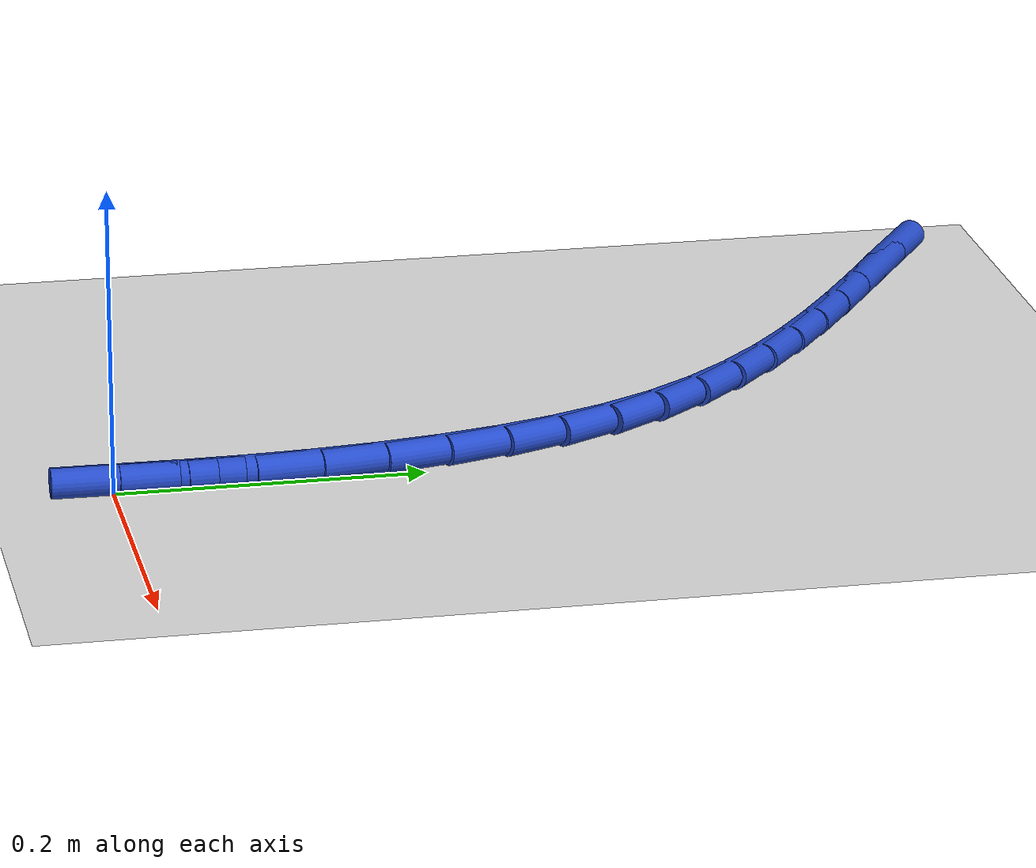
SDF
<sdf version="1.6">
 <world name="default">
  <model name="ground_plane">
   <static>1</static>
   <link name="link">
    <collision name="collision">
     <geometry><plane><normal>0 0 1</normal><size>100 100</size></plane></geometry>
     <surface><friction><ode><mu>100</mu><mu2>50</mu2></ode></friction></surface>
    </collision>
    <visual name="visual">
     <cast_shadows>0</cast_shadows>
     <geometry><plane><normal>0 0 1</normal><size>100 100</size></plane></geometry>
     <material>
      <script><uri>file://media/materials/scripts/gazebo.material</uri><name>Gazebo/WhiteGlow</name></script>
     </material>
    </visual>
   </link>
  </model>
  <model name="line">
   <link name="link_0">
    <pose>1.6046192152785466e-17 8.326672684688674e-17 0.01 0 1.57 1.5554259373008228</pose>
    <collision name="collision">
     <geometry><cylinder><radius>0.01</radius><length>0.08</length></cylinder></geometry>
    </collision>
    <visual name="visual">
     <material>
      <script><name>Gazebo/Blue</name><uri>file://media/materials/scripts/gazebo.material</uri></script>
     </material>
     <geometry><cylinder><radius>0.01</radius><length>0.08</length></cylinder></geometry>
    </visual>
   </link>
   <link name="link_1">
    <pose>0.0006633091673790335 0.04315160207646187 0.01 0 1.57 -1.5537687806283904</pose>
    <collision name="collision">
     <geometry><cylinder><radius>0.01</radius><length>0.08</length></cylinder></geometry>
    </collision>
    <visual name="visual">
     <material>
      <script><name>Gazebo/Blue</name><uri>file://media/materials/scripts/gazebo.material</uri></script>
     </material>
     <geometry><cylinder><radius>0.01</radius><length>0.08</length></cylinder></geometry>
    </visual>
   </link>
   <link name="link_2">
    <pose>-7.289730888802675e-05 0.08638362837355847 0.01 0 1.57 -1.5144177519370408</pose>
    <collision name="collision">
     <geometry><cylinder><radius>0.01</radius><length>0.08</length></cylinder></geometry>
    </collision>
    <visual name="visual">
     <material>
      <script><name>Gazebo/Blue</name><uri>file://media/materials/scripts/gazebo.material</uri></script>
     </material>
     <geometry><cylinder><radius>0.01</radius><length>0.08</length></cylinder></geometry>
    </visual>
   </link>
   <link name="link_3">
    <pose>-0.002498578812207435 0.12936291473853773 0.01 0 1.57 -1.4672574481096157</pose>
    <collision name="collision">
     <geometry><cylinder><radius>0.01</radius><length>0.08</length></cylinder></geometry>
    </collision>
    <visual name="visual">
     <material>
      <script><name>Gazebo/Blue</name><uri>file://media/materials/scripts/gazebo.material</uri></script>
     </material>
     <geometry><cylinder><radius>0.01</radius><length>0.08</length></cylinder></geometry>
    </visual>
   </link>
   <link name="link_4">
    <pose>-0.006903694725985474 0.17175629701864756 0.01 0 1.57 -1.4112332738049453</pose>
    <collision name="collision">
     <geometry><cylinder><radius>0.01</radius><length>0.08</length></cylinder></geometry>
    </collision>
    <visual name="visual">
     <material>
      <script><name>Gazebo/Blue</name><uri>file://media/materials/scripts/gazebo.material</uri></script>
     </material>
     <geometry><cylinder><radius>0.01</radius><length>0.08</length></cylinder></geometry>
    </visual>
   </link>
   <link name="link_5">
    <pose>-0.013578204433628416 0.21323061106113592 0.01 0 1.57 -1.3451344930665576</pose>
    <collision name="collision">
     <geometry><cylinder><radius>0.01</radius><length>0.08</length></cylinder></geometry>
    </collision>
    <visual name="visual">
     <material>
      <script><name>Gazebo/Blue</name><uri>file://media/materials/scripts/gazebo.material</uri></script>
     </material>
     <geometry><cylinder><radius>0.01</radius><length>0.08</length></cylinder></geometry>
    </visual>
   </link>
   <link name="link_6">
    <pose>-0.022812067318542538 0.25345269271325055 0.01 0 1.57 -1.2676942745625357</pose>
    <collision name="collision">
     <geometry><cylinder><radius>0.01</radius><length>0.08</length></cylinder></geometry>
    </collision>
    <visual name="visual">
     <material>
      <script><name>Gazebo/Blue</name><uri>file://media/materials/scripts/gazebo.material</uri></script>
     </material>
     <geometry><cylinder><radius>0.01</radius><length>0.08</length></cylinder></geometry>
    </visual>
   </link>
   <link name="link_7">
    <pose>-0.03489524276413412 0.2920893778222395 0.01 0 1.57 -1.1777880586712044</pose>
    <collision name="collision">
     <geometry><cylinder><radius>0.01</radius><length>0.08</length></cylinder></geometry>
    </collision>
    <visual name="visual">
     <material>
      <script><name>Gazebo/Blue</name><uri>file://media/materials/scripts/gazebo.material</uri></script>
     </material>
     <geometry><cylinder><radius>0.01</radius><length>0.08</length></cylinder></geometry>
    </visual>
   </link>
   <link name="link_8">
    <pose>-0.05011769015380943 0.3288075022353504 0.01 0 1.57 -1.074769846922253</pose>
    <collision name="collision">
     <geometry><cylinder><radius>0.01</radius><length>0.08</length></cylinder></geometry>
    </collision>
    <visual name="visual">
     <material>
      <script><name>Gazebo/Blue</name><uri>file://media/materials/scripts/gazebo.material</uri></script>
     </material>
     <geometry><cylinder><radius>0.01</radius><length>0.08</length></cylinder></geometry>
    </visual>
   </link>
   <link name="link_9">
    <pose>-0.06876934157704286 0.3632739264172566 0.01 0 1.57 -0.9638605360832847</pose>
    <collision name="collision">
     <geometry><cylinder><radius>0.01</radius><length>0.08</length></cylinder></geometry>
    </collision>
    <visual name="visual">
     <material>
      <script><name>Gazebo/Blue</name><uri>file://media/materials/scripts/gazebo.material</uri></script>
     </material>
     <geometry><cylinder><radius>0.01</radius><length>0.08</length></cylinder></geometry>
    </visual>
   </link>
   <link name="link_10">
    <pose>-0.0909967035301576 0.3952848717779928 0.01 0 1.57 -0.8632682270970617</pose>
    <collision name="collision">
     <geometry><cylinder><radius>0.01</radius><length>0.08</length></cylinder></geometry>
    </collision>
    <visual name="visual">
     <material>
      <script><name>Gazebo/Blue</name><uri>file://media/materials/scripts/gazebo.material</uri></script>
     </material>
     <geometry><cylinder><radius>0.01</radius><length>0.08</length></cylinder></geometry>
    </visual>
   </link>
   <link name="link_11">
    <pose>-0.11646820613937421 0.42506775481511244 0.01 0 1.57 -0.7780507097465544</pose>
    <collision name="collision">
     <geometry><cylinder><radius>0.01</radius><length>0.08</length></cylinder></geometry>
    </collision>
    <visual name="visual">
     <material>
      <script><name>Gazebo/Blue</name><uri>file://media/materials/scripts/gazebo.material</uri></script>
     </material>
     <geometry><cylinder><radius>0.01</radius><length>0.08</length></cylinder></geometry>
    </visual>
   </link>
   <link name="link_12">
    <pose>-0.14475279095310872 0.45293972452226494 0.01 0 1.57 -0.7084860389107985</pose>
    <collision name="collision">
     <geometry><cylinder><radius>0.01</radius><length>0.08</length></cylinder></geometry>
    </collision>
    <visual name="visual">
     <material>
      <script><name>Gazebo/Blue</name><uri>file://media/materials/scripts/gazebo.material</uri></script>
     </material>
     <geometry><cylinder><radius>0.01</radius><length>0.08</length></cylinder></geometry>
    </visual>
   </link>
   <link name="link_13">
    <pose>-0.17541939951977717 0.47921792989309964 0.01 0 1.57 -0.6539819894974859</pose>
    <collision name="collision">
     <geometry><cylinder><radius>0.01</radius><length>0.08</length></cylinder></geometry>
    </collision>
    <visual name="visual">
     <material>
      <script><name>Gazebo/Blue</name><uri>file://media/materials/scripts/gazebo.material</uri></script>
     </material>
     <geometry><cylinder><radius>0.01</radius><length>0.08</length></cylinder></geometry>
    </visual>
   </link>
   <link name="link_14">
    <pose>-0.20803697338779537 0.5042195199212656 0.01 0 1.57 -0.6135883434165922</pose>
    <collision name="collision">
     <geometry><cylinder><radius>0.01</radius><length>0.08</length></cylinder></geometry>
    </collision>
    <visual name="visual">
     <material>
      <script><name>Gazebo/Blue</name><uri>file://media/materials/scripts/gazebo.material</uri></script>
     </material>
     <geometry><cylinder><radius>0.01</radius><length>0.08</length></cylinder></geometry>
    </visual>
   </link>
   <link name="link_15">
    <pose>-0.24217445410557945 0.5282616436004123 0.01 0 1.57 -0.5863417867000147</pose>
    <collision name="collision">
     <geometry><cylinder><radius>0.01</radius><length>0.08</length></cylinder></geometry>
    </collision>
    <visual name="visual">
     <material>
      <script><name>Gazebo/Blue</name><uri>file://media/materials/scripts/gazebo.material</uri></script>
     </material>
     <geometry><cylinder><radius>0.01</radius><length>0.08</length></cylinder></geometry>
    </visual>
   </link>
   <link name="link_16">
    <pose>-0.2774007832215454 0.5516614499241891 0.01 0 1.57 -0.5714612175682233</pose>
    <collision name="collision">
     <geometry><cylinder><radius>0.01</radius><length>0.08</length></cylinder></geometry>
    </collision>
    <visual name="visual">
     <material>
      <script><name>Gazebo/Blue</name><uri>file://media/materials/scripts/gazebo.material</uri></script>
     </material>
     <geometry><cylinder><radius>0.01</radius><length>0.08</length></cylinder></geometry>
    </visual>
   </link>
   <link name="link_17">
    <pose>-0.31328490228410927 0.5747360878862453 0.01 0 1.57 -0.5684418973338173</pose>
    <collision name="collision">
     <geometry><cylinder><radius>0.01</radius><length>0.08</length></cylinder></geometry>
    </collision>
    <visual name="visual">
     <material>
      <script><name>Gazebo/Blue</name><uri>file://media/materials/scripts/gazebo.material</uri></script>
     </material>
     <geometry><cylinder><radius>0.01</radius><length>0.08</length></cylinder></geometry>
    </visual>
   </link>
   <link name="link_18">
    <pose>-0.3493957528416869 0.59780270648023 0.01 0 1.57 -0.5770896497452037</pose>
    <collision name="collision">
     <geometry><cylinder><radius>0.01</radius><length>0.08</length></cylinder></geometry>
    </collision>
    <visual name="visual">
     <material>
      <script><name>Gazebo/Blue</name><uri>file://media/materials/scripts/gazebo.material</uri></script>
     </material>
     <geometry><cylinder><radius>0.01</radius><length>0.08</length></cylinder></geometry>
    </visual>
   </link>
   <link name="link_170">
    <pose>7.806255641895632e-18 -8.326672684688674e-17 0.01 0 1.57 1.553939117959712</pose>
    <collision name="collision">
     <geometry><cylinder><radius>0.01</radius><length>0.08</length></cylinder></geometry>
    </collision>
    <visual name="visual">
     <material>
      <script><name>Gazebo/Blue</name><uri>file://media/materials/scripts/gazebo.material</uri></script>
     </material>
     <geometry><cylinder><radius>0.01</radius><length>0.08</length></cylinder></geometry>
    </visual>
   </link>
   <link name="link_171">
    <pose>0.0007282644997072835 0.04319787000173114 0.01 0 1.57 1.553939117959712</pose>
    <collision name="collision">
     <geometry><cylinder><radius>0.01</radius><length>0.08</length></cylinder></geometry>
    </collision>
    <visual name="visual">
     <material>
      <script><name>Gazebo/Blue</name><uri>file://media/materials/scripts/gazebo.material</uri></script>
     </material>
     <geometry><cylinder><radius>0.01</radius><length>0.08</length></cylinder></geometry>
    </visual>
   </link>
  </model>
 </world>
</sdf>
